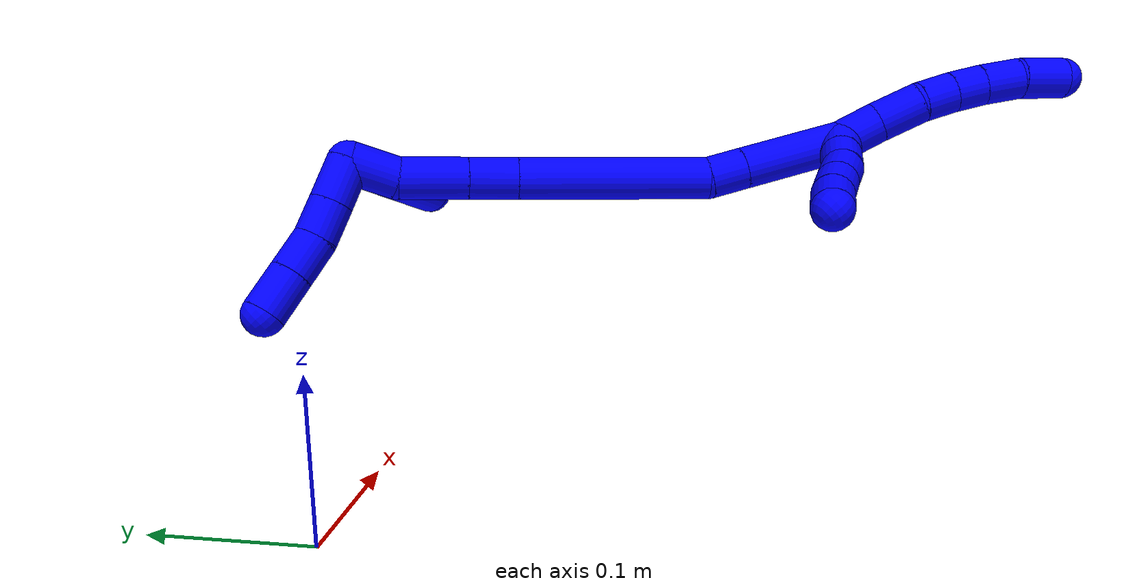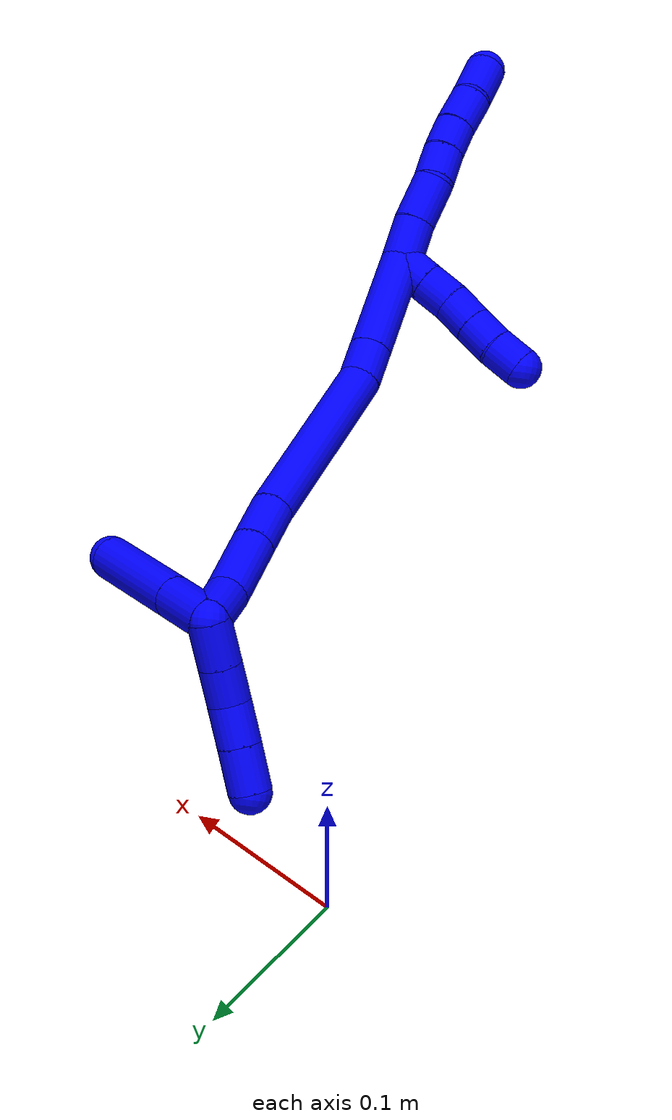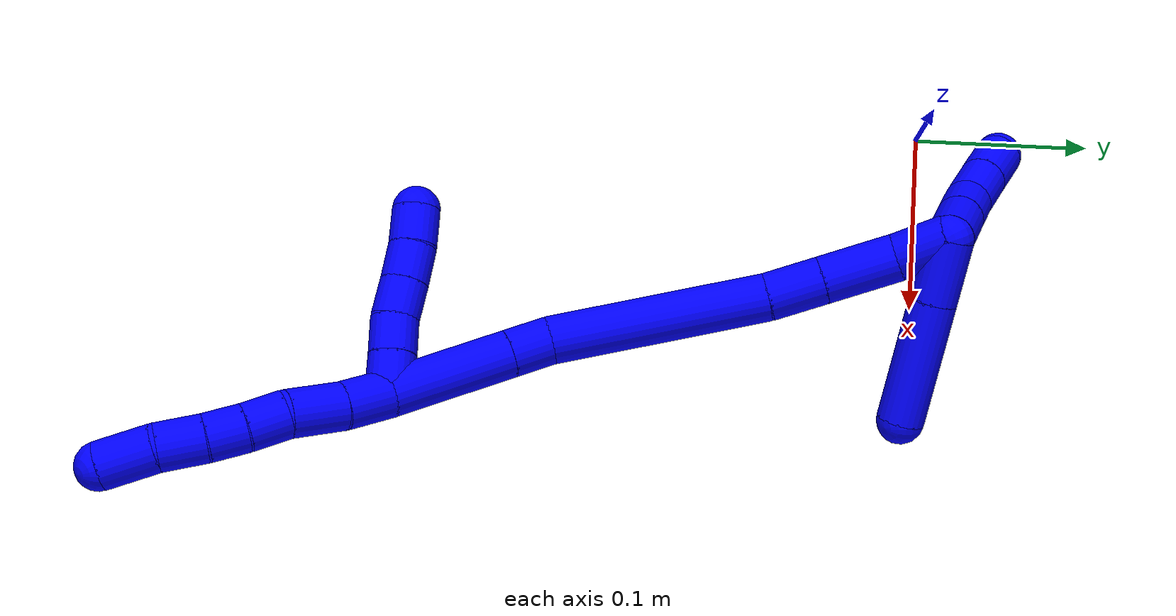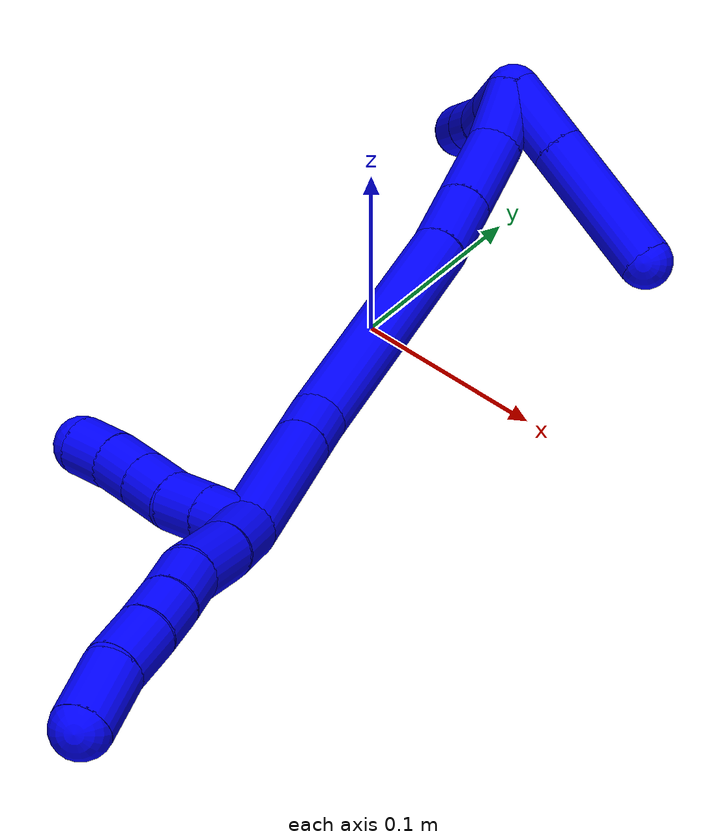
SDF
<sdf version="1.7">
 <world name="default">
  <plugin name="TubeGeneratorPlugin" filename="libtube_generator_plugin.so"/>
  <model name="photoneo_s_sensor">
   <static>1</static>
   <pose>0 0 2 1.57079 1.57079 3.14159</pose>
   <link name="link">
    <inertial><mass>0.1</mass></inertial>
    <sensor name="sensor" type="depth">
     <update_rate>30</update_rate>
     <camera>
      <horizontal_fov>1.22</horizontal_fov>
      <image><width>1920</width><height>1200</height><format>B8G8R8</format></image>
      <clip><near>0.1</near><far>4</far></clip>
      <depth_camera><output>points</output></depth_camera>
     </camera>
     <plugin name="camera_plugin" filename="libgazebo_ros_depth_camera.so">
      <baseline>0.2</baseline>
      <alwaysOn>1</alwaysOn>
      <updateRate>0.0</updateRate>
      <cameraName>camera_ir</cameraName>
      <imageTopicName>/camera/color/image_raw</imageTopicName>
      <cameraInfoTopicName>/camera/color/camera_info</cameraInfoTopicName>
      <depthImageTopicName>/camera/depth/image_raw</depthImageTopicName>
      <depthImageCameraInfoTopicName>/camera/depth/camera_info</depthImageCameraInfoTopicName>
      <pointCloudTopicName>/camera/depth/points</pointCloudTopicName>
      <frameName>fr_optical</frameName>
      <pointCloudCutoff>0.1</pointCloudCutoff>
      <pointCloudCutoffMax>2.0</pointCloudCutoffMax>
      <distortionK1>0</distortionK1>
      <distortionK2>0</distortionK2>
      <distortionK3>0</distortionK3>
      <distortionT1>0</distortionT1>
      <distortionT2>0</distortionT2>
      <CxPrime>0</CxPrime>
      <Cx>0</Cx>
      <Cy>0</Cy>
      <focalLength>0</focalLength>
      <hackBaseline>0</hackBaseline>
     </plugin>
    </sensor>
   </link>
  </model>
  <gravity>0 0 -9.8</gravity>
  <magnetic_field>6e-06 2.3e-05 -4.2e-05</magnetic_field>
  <atmosphere type="adiabatic"/>
  <physics name="default_physics" default="0" type="ode">
   <max_step_size>0.003</max_step_size>
   <real_time_factor>1</real_time_factor>
   <real_time_update_rate>1000</real_time_update_rate>
   <max_contacts>10000</max_contacts>
   <ode>
    <solver>
     <type>quick</type>
     <iters>100</iters>
     <sor>1.3</sor>
     <use_dynamic_moi_rescaling>0</use_dynamic_moi_rescaling>
    </solver>
    <constraints>
     <contact_max_correcting_vel>0</contact_max_correcting_vel>
     <contact_surface_layer>0.001</contact_surface_layer>
     <cfm>0</cfm>
     <erp>0.2</erp>
    </constraints>
   </ode>
  </physics>
  <scene><ambient>0.4 0.4 0.4 1</ambient><background>0.7 0.7 0.7 1</background><shadows>0</shadows></scene>
  <audio><device>default</device></audio>
  <spherical_coordinates>
   <surface_model>EARTH_WGS84</surface_model>
   <latitude_deg>0</latitude_deg>
   <longitude_deg>0</longitude_deg>
   <elevation>0</elevation>
   <heading_deg>0</heading_deg>
  </spherical_coordinates>
  <model name="bin">
   <static>1</static>
   <link name="bottom">
    <collision name="collision-bottom">
     <pose>0 0 -0.01 0 -0 0</pose>
     <geometry><box><size>0.8 0.6 0.02</size></box></geometry>
     <surface>
      <friction><ode><mu>100</mu><mu2>100</mu2></ode></friction>
      <contact><collide_bitmask>65535</collide_bitmask></contact>
     </surface>
    </collision>
   </link>
   <link name="west_wall">
    <collision name="collision-west_wall">
     <pose>-0.41 0 0.1 0 -0 0</pose>
     <geometry><box><size>0.02 0.6 0.2</size></box></geometry>
     <surface>
      <friction><ode><mu>100</mu><mu2>100</mu2></ode></friction>
      <contact><collide_bitmask>65535</collide_bitmask></contact>
     </surface>
    </collision>
   </link>
   <link name="east_wall">
    <collision name="collision-east_wall">
     <pose>0.41 0 0.1 0 -0 0</pose>
     <geometry><box><size>0.02 0.6 0.2</size></box></geometry>
     <surface>
      <friction><ode><mu>100</mu><mu2>100</mu2></ode></friction>
      <contact><collide_bitmask>65535</collide_bitmask></contact>
     </surface>
    </collision>
   </link>
   <link name="south_wall">
    <collision name="collision-south_wall">
     <pose>0 -0.31 0.1 0 -0 0</pose>
     <geometry><box><size>0.8 0.02 0.2</size></box></geometry>
     <surface>
      <friction><ode><mu>100</mu><mu2>100</mu2></ode></friction>
      <contact><collide_bitmask>65535</collide_bitmask></contact>
     </surface>
    </collision>
   </link>
   <link name="north_wall">
    <collision name="collision-north_wall">
     <pose>0 0.31 0.1 0 -0 0</pose>
     <geometry><box><size>0.8 0.02 0.2</size></box></geometry>
     <surface>
      <friction><ode><mu>100</mu><mu2>100</mu2></ode></friction>
      <contact><collide_bitmask>65535</collide_bitmask></contact>
     </surface>
    </collision>
   </link>
  </model>
  <model name="1">
   <static>0</static>
   <link name="1">
    <collision name="collision-cylinder-e_1_2_8">
     <pose>-0.000118 -0.003374 0.012473 0.264188 -0.009148 -0.001215</pose>
     <geometry><cylinder><radius>0.0125</radius><length>0.025845</length></cylinder></geometry>
     <surface>
      <friction><ode><mu>1.16</mu><mu2>1.16</mu2><slip1>0</slip1><slip2>0</slip2></ode></friction>
      <contact><ode><kp>1e+06</kp><kd>1</kd><max_vel>0</max_vel><min_depth>0.001</min_depth></ode></contact>
     </surface>
    </collision>
    <visual name="visual-cylinder-e_1_2_8">
     <pose>-0.000118 -0.003374 0.012473 0.264188 -0.009148 -0.001215</pose>
     <geometry><cylinder><radius>0.0125</radius><length>0.025845</length></cylinder></geometry>
     <material><ambient>0 0 1 1</ambient></material>
    </visual>
    <collision name="collision-cylinder-e_2_8_9">
     <pose>-0.001763 -0.011483 0.038714 0.331231 -0.104457 -0.017475</pose>
     <geometry><cylinder><radius>0.0125</radius><length>0.029277</length></cylinder></geometry>
     <surface>
      <friction><ode><mu>1.16</mu><mu2>1.16</mu2><slip1>0</slip1><slip2>0</slip2></ode></friction>
      <contact><ode><kp>1e+06</kp><kd>1</kd><max_vel>0</max_vel><min_depth>0.001</min_depth></ode></contact>
     </surface>
    </collision>
    <visual name="visual-cylinder-e_2_8_9">
     <pose>-0.001763 -0.011483 0.038714 0.331231 -0.104457 -0.017475</pose>
     <geometry><cylinder><radius>0.0125</radius><length>0.029277</length></cylinder></geometry>
     <material><ambient>0 0 1 1</ambient></material>
    </visual>
    <collision name="collision-cylinder-e_3_9_10">
     <pose>-0.002051 -0.020319 0.062218 0.398666 0.1166 0.023581</pose>
     <geometry><cylinder><radius>0.0125</radius><length>0.021275</length></cylinder></geometry>
     <surface>
      <friction><ode><mu>1.16</mu><mu2>1.16</mu2><slip1>0</slip1><slip2>0</slip2></ode></friction>
      <contact><ode><kp>1e+06</kp><kd>1</kd><max_vel>0</max_vel><min_depth>0.001</min_depth></ode></contact>
     </surface>
    </collision>
    <visual name="visual-cylinder-e_3_9_10">
     <pose>-0.002051 -0.020319 0.062218 0.398666 0.1166 0.023581</pose>
     <geometry><cylinder><radius>0.0125</radius><length>0.021275</length></cylinder></geometry>
     <material><ambient>0 0 1 1</ambient></material>
    </visual>
    <collision name="collision-cylinder-e_4_10_11">
     <pose>-1.6e-05 -0.02903 0.080866 0.477365 0.079343 0.019315</pose>
     <geometry><cylinder><radius>0.0125</radius><length>0.020129</length></cylinder></geometry>
     <surface>
      <friction><ode><mu>1.16</mu><mu2>1.16</mu2><slip1>0</slip1><slip2>0</slip2></ode></friction>
      <contact><ode><kp>1e+06</kp><kd>1</kd><max_vel>0</max_vel><min_depth>0.001</min_depth></ode></contact>
     </surface>
    </collision>
    <visual name="visual-cylinder-e_4_10_11">
     <pose>-1.6e-05 -0.02903 0.080866 0.477365 0.079343 0.019315</pose>
     <geometry><cylinder><radius>0.0125</radius><length>0.020129</length></cylinder></geometry>
     <material><ambient>0 0 1 1</ambient></material>
    </visual>
    <collision name="collision-cylinder-e_5_11_12">
     <pose>0.001336 -0.040071 0.100079 0.55818 0.04559 0.013067</pose>
     <geometry><cylinder><radius>0.0125</radius><length>0.024314</length></cylinder></geometry>
     <surface>
      <friction><ode><mu>1.16</mu><mu2>1.16</mu2><slip1>0</slip1><slip2>0</slip2></ode></friction>
      <contact><ode><kp>1e+06</kp><kd>1</kd><max_vel>0</max_vel><min_depth>0.001</min_depth></ode></contact>
     </surface>
    </collision>
    <visual name="visual-cylinder-e_5_11_12">
     <pose>0.001336 -0.040071 0.100079 0.55818 0.04559 0.013067</pose>
     <geometry><cylinder><radius>0.0125</radius><length>0.024314</length></cylinder></geometry>
     <material><ambient>0 0 1 1</ambient></material>
    </visual>
    <collision name="collision-cylinder-e_6_12_6">
     <pose>0.005072 -0.055213 0.121631 0.658724 0.220014 0.075473</pose>
     <geometry><cylinder><radius>0.0125</radius><length>0.02916</length></cylinder></geometry>
     <surface>
      <friction><ode><mu>1.16</mu><mu2>1.16</mu2><slip1>0</slip1><slip2>0</slip2></ode></friction>
      <contact><ode><kp>1e+06</kp><kd>1</kd><max_vel>0</max_vel><min_depth>0.001</min_depth></ode></contact>
     </surface>
    </collision>
    <visual name="visual-cylinder-e_6_12_6">
     <pose>0.005072 -0.055213 0.121631 0.658724 0.220014 0.075473</pose>
     <geometry><cylinder><radius>0.0125</radius><length>0.02916</length></cylinder></geometry>
     <material><ambient>0 0 1 1</ambient></material>
    </visual>
    <collision name="collision-cylinder-e_1_2_13">
     <pose>-0.007268 -0.004136 -0.005483 2.4953 -0.813641 -1.82016</pose>
     <geometry><cylinder><radius>0.0125</radius><length>0.02</length></cylinder></geometry>
     <surface>
      <friction><ode><mu>1.16</mu><mu2>1.16</mu2><slip1>0</slip1><slip2>0</slip2></ode></friction>
      <contact><ode><kp>1e+06</kp><kd>1</kd><max_vel>0</max_vel><min_depth>0.001</min_depth></ode></contact>
     </surface>
    </collision>
    <visual name="visual-cylinder-e_1_2_13">
     <pose>-0.007268 -0.004136 -0.005483 2.4953 -0.813641 -1.82016</pose>
     <geometry><cylinder><radius>0.0125</radius><length>0.02</length></cylinder></geometry>
     <material><ambient>0 0 1 1</ambient></material>
    </visual>
    <collision name="collision-cylinder-e_2_13_14">
     <pose>-0.021806 -0.012573 -0.01632 2.46494 -0.813936 -1.77238</pose>
     <geometry><cylinder><radius>0.0125</radius><length>0.02</length></cylinder></geometry>
     <surface>
      <friction><ode><mu>1.16</mu><mu2>1.16</mu2><slip1>0</slip1><slip2>0</slip2></ode></friction>
      <contact><ode><kp>1e+06</kp><kd>1</kd><max_vel>0</max_vel><min_depth>0.001</min_depth></ode></contact>
     </surface>
    </collision>
    <visual name="visual-cylinder-e_2_13_14">
     <pose>-0.021806 -0.012573 -0.01632 2.46494 -0.813936 -1.77238</pose>
     <geometry><cylinder><radius>0.0125</radius><length>0.02</length></cylinder></geometry>
     <material><ambient>0 0 1 1</ambient></material>
    </visual>
    <collision name="collision-cylinder-e_3_14_15">
     <pose>-0.036344 -0.019508 -0.028017 2.74774 -0.813632 -2.27425</pose>
     <geometry><cylinder><radius>0.0125</radius><length>0.02</length></cylinder></geometry>
     <surface>
      <friction><ode><mu>1.16</mu><mu2>1.16</mu2><slip1>0</slip1><slip2>0</slip2></ode></friction>
      <contact><ode><kp>1e+06</kp><kd>1</kd><max_vel>0</max_vel><min_depth>0.001</min_depth></ode></contact>
     </surface>
    </collision>
    <visual name="visual-cylinder-e_3_14_15">
     <pose>-0.036344 -0.019508 -0.028017 2.74774 -0.813632 -2.27425</pose>
     <geometry><cylinder><radius>0.0125</radius><length>0.02</length></cylinder></geometry>
     <material><ambient>0 0 1 1</ambient></material>
    </visual>
    <collision name="collision-cylinder-e_4_15_16">
     <pose>-0.051059 -0.024878 -0.040447 2.71946 -0.840141 -2.24706</pose>
     <geometry><cylinder><radius>0.0125</radius><length>0.02</length></cylinder></geometry>
     <surface>
      <friction><ode><mu>1.16</mu><mu2>1.16</mu2><slip1>0</slip1><slip2>0</slip2></ode></friction>
      <contact><ode><kp>1e+06</kp><kd>1</kd><max_vel>0</max_vel><min_depth>0.001</min_depth></ode></contact>
     </surface>
    </collision>
    <visual name="visual-cylinder-e_4_15_16">
     <pose>-0.051059 -0.024878 -0.040447 2.71946 -0.840141 -2.24706</pose>
     <geometry><cylinder><radius>0.0125</radius><length>0.02</length></cylinder></geometry>
     <material><ambient>0 0 1 1</ambient></material>
    </visual>
    <collision name="collision-cylinder-e_5_16_5">
     <pose>-0.066053 -0.031338 -0.051936 2.53771 -0.855086 -1.94237</pose>
     <geometry><cylinder><radius>0.0125</radius><length>0.02</length></cylinder></geometry>
     <surface>
      <friction><ode><mu>1.16</mu><mu2>1.16</mu2><slip1>0</slip1><slip2>0</slip2></ode></friction>
      <contact><ode><kp>1e+06</kp><kd>1</kd><max_vel>0</max_vel><min_depth>0.001</min_depth></ode></contact>
     </surface>
    </collision>
    <visual name="visual-cylinder-e_5_16_5">
     <pose>-0.066053 -0.031338 -0.051936 2.53771 -0.855086 -1.94237</pose>
     <geometry><cylinder><radius>0.0125</radius><length>0.02</length></cylinder></geometry>
     <material><ambient>0 0 1 1</ambient></material>
    </visual>
    <collision name="collision-cylinder-e_1_2_17">
     <pose>-0.004238 0.013593 -0.029028 -2.70364 -0.131449 0.575124</pose>
     <geometry><cylinder><radius>0.0125</radius><length>0.064663</length></cylinder></geometry>
     <surface>
      <friction><ode><mu>1.16</mu><mu2>1.16</mu2><slip1>0</slip1><slip2>0</slip2></ode></friction>
      <contact><ode><kp>1e+06</kp><kd>1</kd><max_vel>0</max_vel><min_depth>0.001</min_depth></ode></contact>
     </surface>
    </collision>
    <visual name="visual-cylinder-e_1_2_17">
     <pose>-0.004238 0.013593 -0.029028 -2.70364 -0.131449 0.575124</pose>
     <geometry><cylinder><radius>0.0125</radius><length>0.064663</length></cylinder></geometry>
     <material><ambient>0 0 1 1</ambient></material>
    </visual>
    <collision name="collision-cylinder-e_2_17_18">
     <pose>-0.009927 0.031885 -0.068162 -2.7064 -0.129521 0.570631</pose>
     <geometry><cylinder><radius>0.0125</radius><length>0.022479</length></cylinder></geometry>
     <surface>
      <friction><ode><mu>1.16</mu><mu2>1.16</mu2><slip1>0</slip1><slip2>0</slip2></ode></friction>
      <contact><ode><kp>1e+06</kp><kd>1</kd><max_vel>0</max_vel><min_depth>0.001</min_depth></ode></contact>
     </surface>
    </collision>
    <visual name="visual-cylinder-e_2_17_18">
     <pose>-0.009927 0.031885 -0.068162 -2.7064 -0.129521 0.570631</pose>
     <geometry><cylinder><radius>0.0125</radius><length>0.022479</length></cylinder></geometry>
     <material><ambient>0 0 1 1</ambient></material>
    </visual>
    <collision name="collision-cylinder-e_3_18_19">
     <pose>-0.018194 0.073597 -0.120924 -2.42689 -0.12009 0.319274</pose>
     <geometry><cylinder><radius>0.0125</radius><length>0.11377</length></cylinder></geometry>
     <surface>
      <friction><ode><mu>1.16</mu><mu2>1.16</mu2><slip1>0</slip1><slip2>0</slip2></ode></friction>
      <contact><ode><kp>1e+06</kp><kd>1</kd><max_vel>0</max_vel><min_depth>0.001</min_depth></ode></contact>
     </surface>
    </collision>
    <visual name="visual-cylinder-e_3_18_19">
     <pose>-0.018194 0.073597 -0.120924 -2.42689 -0.12009 0.319274</pose>
     <geometry><cylinder><radius>0.0125</radius><length>0.11377</length></cylinder></geometry>
     <material><ambient>0 0 1 1</ambient></material>
    </visual>
    <collision name="collision-cylinder-e_4_19_20">
     <pose>-0.028226 0.119793 -0.174617 -2.4477 -0.220435 0.594032</pose>
     <geometry><cylinder><radius>0.0125</radius><length>0.029429</length></cylinder></geometry>
     <surface>
      <friction><ode><mu>1.16</mu><mu2>1.16</mu2><slip1>0</slip1><slip2>0</slip2></ode></friction>
      <contact><ode><kp>1e+06</kp><kd>1</kd><max_vel>0</max_vel><min_depth>0.001</min_depth></ode></contact>
     </surface>
    </collision>
    <visual name="visual-cylinder-e_4_19_20">
     <pose>-0.028226 0.119793 -0.174617 -2.4477 -0.220435 0.594032</pose>
     <geometry><cylinder><radius>0.0125</radius><length>0.029429</length></cylinder></geometry>
     <material><ambient>0 0 1 1</ambient></material>
    </visual>
    <collision name="collision-cylinder-e_5_20_21">
     <pose>-0.035827 0.141472 -0.200932 -2.45596 -0.218553 0.596459</pose>
     <geometry><cylinder><radius>0.0125</radius><length>0.040435</length></cylinder></geometry>
     <surface>
      <friction><ode><mu>1.16</mu><mu2>1.16</mu2><slip1>0</slip1><slip2>0</slip2></ode></friction>
      <contact><ode><kp>1e+06</kp><kd>1</kd><max_vel>0</max_vel><min_depth>0.001</min_depth></ode></contact>
     </surface>
    </collision>
    <visual name="visual-cylinder-e_5_20_21">
     <pose>-0.035827 0.141472 -0.200932 -2.45596 -0.218553 0.596459</pose>
     <geometry><cylinder><radius>0.0125</radius><length>0.040435</length></cylinder></geometry>
     <material><ambient>0 0 1 1</ambient></material>
    </visual>
    <collision name="collision-cylinder-e_6_21_1">
     <pose>-0.045765 0.165222 -0.223692 -2.15769 -0.389948 0.706134</pose>
     <geometry><cylinder><radius>0.0125</radius><length>0.029224</length></cylinder></geometry>
     <surface>
      <friction><ode><mu>1.16</mu><mu2>1.16</mu2><slip1>0</slip1><slip2>0</slip2></ode></friction>
      <contact><ode><kp>1e+06</kp><kd>1</kd><max_vel>0</max_vel><min_depth>0.001</min_depth></ode></contact>
     </surface>
    </collision>
    <visual name="visual-cylinder-e_6_21_1">
     <pose>-0.045765 0.165222 -0.223692 -2.15769 -0.389948 0.706134</pose>
     <geometry><cylinder><radius>0.0125</radius><length>0.029224</length></cylinder></geometry>
     <material><ambient>0 0 1 1</ambient></material>
    </visual>
    <collision name="collision-cylinder-e_1_1_22">
     <pose>-0.035055 0.174448 -0.226178 0.385439 1.25056 0.279908</pose>
     <geometry><cylinder><radius>0.0125</radius><length>0.034272</length></cylinder></geometry>
     <surface>
      <friction><ode><mu>1.16</mu><mu2>1.16</mu2><slip1>0</slip1><slip2>0</slip2></ode></friction>
      <contact><ode><kp>1e+06</kp><kd>1</kd><max_vel>0</max_vel><min_depth>0.001</min_depth></ode></contact>
     </surface>
    </collision>
    <visual name="visual-cylinder-e_1_1_22">
     <pose>-0.035055 0.174448 -0.226178 0.385439 1.25056 0.279908</pose>
     <geometry><cylinder><radius>0.0125</radius><length>0.034272</length></cylinder></geometry>
     <material><ambient>0 0 1 1</ambient></material>
    </visual>
    <collision name="collision-cylinder-e_2_22_4">
     <pose>0.012412 0.168445 -0.211657 0.395407 1.25141 0.28749</pose>
     <geometry><cylinder><radius>0.0125</radius><length>0.065728</length></cylinder></geometry>
     <surface>
      <friction><ode><mu>1.16</mu><mu2>1.16</mu2><slip1>0</slip1><slip2>0</slip2></ode></friction>
      <contact><ode><kp>1e+06</kp><kd>1</kd><max_vel>0</max_vel><min_depth>0.001</min_depth></ode></contact>
     </surface>
    </collision>
    <visual name="visual-cylinder-e_2_22_4">
     <pose>0.012412 0.168445 -0.211657 0.395407 1.25141 0.28749</pose>
     <geometry><cylinder><radius>0.0125</radius><length>0.065728</length></cylinder></geometry>
     <material><ambient>0 0 1 1</ambient></material>
    </visual>
    <collision name="collision-cylinder-e_1_1_23">
     <pose>-0.051674 0.170261 -0.242893 2.65395 -0.026749 -0.107426</pose>
     <geometry><cylinder><radius>0.0125</radius><length>0.026535</length></cylinder></geometry>
     <surface>
      <friction><ode><mu>1.16</mu><mu2>1.16</mu2><slip1>0</slip1><slip2>0</slip2></ode></friction>
      <contact><ode><kp>1e+06</kp><kd>1</kd><max_vel>0</max_vel><min_depth>0.001</min_depth></ode></contact>
     </surface>
    </collision>
    <visual name="visual-cylinder-e_1_1_23">
     <pose>-0.051674 0.170261 -0.242893 2.65395 -0.026749 -0.107426</pose>
     <geometry><cylinder><radius>0.0125</radius><length>0.026535</length></cylinder></geometry>
     <material><ambient>0 0 1 1</ambient></material>
    </visual>
    <collision name="collision-cylinder-e_2_23_24">
     <pose>-0.052386 0.158901 -0.264546 2.66366 -0.031864 -0.13062</pose>
     <geometry><cylinder><radius>0.0125</radius><length>0.022391</length></cylinder></geometry>
     <surface>
      <friction><ode><mu>1.16</mu><mu2>1.16</mu2><slip1>0</slip1><slip2>0</slip2></ode></friction>
      <contact><ode><kp>1e+06</kp><kd>1</kd><max_vel>0</max_vel><min_depth>0.001</min_depth></ode></contact>
     </surface>
    </collision>
    <visual name="visual-cylinder-e_2_23_24">
     <pose>-0.052386 0.158901 -0.264546 2.66366 -0.031864 -0.13062</pose>
     <geometry><cylinder><radius>0.0125</radius><length>0.022391</length></cylinder></geometry>
     <material><ambient>0 0 1 1</ambient></material>
    </visual>
    <collision name="collision-cylinder-e_3_24_25">
     <pose>-0.054865 0.149733 -0.285847 2.80156 -0.174236 -0.941242</pose>
     <geometry><cylinder><radius>0.0125</radius><length>0.024483</length></cylinder></geometry>
     <surface>
      <friction><ode><mu>1.16</mu><mu2>1.16</mu2><slip1>0</slip1><slip2>0</slip2></ode></friction>
      <contact><ode><kp>1e+06</kp><kd>1</kd><max_vel>0</max_vel><min_depth>0.001</min_depth></ode></contact>
     </surface>
    </collision>
    <visual name="visual-cylinder-e_3_24_25">
     <pose>-0.054865 0.149733 -0.285847 2.80156 -0.174236 -0.941242</pose>
     <geometry><cylinder><radius>0.0125</radius><length>0.024483</length></cylinder></geometry>
     <material><ambient>0 0 1 1</ambient></material>
    </visual>
    <collision name="collision-cylinder-e_4_25_3">
     <pose>-0.059157 0.141401 -0.309602 2.8067 -0.163933 -0.904799</pose>
     <geometry><cylinder><radius>0.0125</radius><length>0.026592</length></cylinder></geometry>
     <surface>
      <friction><ode><mu>1.16</mu><mu2>1.16</mu2><slip1>0</slip1><slip2>0</slip2></ode></friction>
      <contact><ode><kp>1e+06</kp><kd>1</kd><max_vel>0</max_vel><min_depth>0.001</min_depth></ode></contact>
     </surface>
    </collision>
    <visual name="visual-cylinder-e_4_25_3">
     <pose>-0.059157 0.141401 -0.309602 2.8067 -0.163933 -0.904799</pose>
     <geometry><cylinder><radius>0.0125</radius><length>0.026592</length></cylinder></geometry>
     <material><ambient>0 0 1 1</ambient></material>
    </visual>
    <collision name="collision-sphere-3">
     <pose>-0.061327 0.13709 -0.321991 0 -0 0</pose>
     <geometry><sphere><radius>0.0125</radius></sphere></geometry>
     <surface>
      <friction><ode><mu>1.16</mu><mu2>1.16</mu2><slip1>0</slip1><slip2>0</slip2></ode></friction>
      <contact><ode><kp>1e+06</kp><kd>1</kd><max_vel>0</max_vel><min_depth>0.001</min_depth></ode></contact>
     </surface>
    </collision>
    <visual name="visual-sphere-3">
     <pose>-0.061327 0.13709 -0.321991 0 -0 0</pose>
     <geometry><sphere><radius>0.0125</radius></sphere></geometry>
     <material><ambient>0 0 1 1</ambient></material>
    </visual>
    <collision name="collision-sphere-25">
     <pose>-0.056987 0.145712 -0.297213 0 -0 0</pose>
     <geometry><sphere><radius>0.0125</radius></sphere></geometry>
     <surface>
      <friction><ode><mu>1.16</mu><mu2>1.16</mu2><slip1>0</slip1><slip2>0</slip2></ode></friction>
      <contact><ode><kp>1e+06</kp><kd>1</kd><max_vel>0</max_vel><min_depth>0.001</min_depth></ode></contact>
     </surface>
    </collision>
    <visual name="visual-sphere-25">
     <pose>-0.056987 0.145712 -0.297213 0 -0 0</pose>
     <geometry><sphere><radius>0.0125</radius></sphere></geometry>
     <material><ambient>0 0 1 1</ambient></material>
    </visual>
    <collision name="collision-sphere-24">
     <pose>-0.052742 0.153754 -0.274482 0 -0 0</pose>
     <geometry><sphere><radius>0.0125</radius></sphere></geometry>
     <surface>
      <friction><ode><mu>1.16</mu><mu2>1.16</mu2><slip1>0</slip1><slip2>0</slip2></ode></friction>
      <contact><ode><kp>1e+06</kp><kd>1</kd><max_vel>0</max_vel><min_depth>0.001</min_depth></ode></contact>
     </surface>
    </collision>
    <visual name="visual-sphere-24">
     <pose>-0.052742 0.153754 -0.274482 0 -0 0</pose>
     <geometry><sphere><radius>0.0125</radius></sphere></geometry>
     <material><ambient>0 0 1 1</ambient></material>
    </visual>
    <collision name="collision-sphere-23">
     <pose>-0.052029 0.164047 -0.25461 0 -0 0</pose>
     <geometry><sphere><radius>0.0125</radius></sphere></geometry>
     <surface>
      <friction><ode><mu>1.16</mu><mu2>1.16</mu2><slip1>0</slip1><slip2>0</slip2></ode></friction>
      <contact><ode><kp>1e+06</kp><kd>1</kd><max_vel>0</max_vel><min_depth>0.001</min_depth></ode></contact>
     </surface>
    </collision>
    <visual name="visual-sphere-23">
     <pose>-0.052029 0.164047 -0.25461 0 -0 0</pose>
     <geometry><sphere><radius>0.0125</radius></sphere></geometry>
     <material><ambient>0 0 1 1</ambient></material>
    </visual>
    <collision name="collision-sphere-4">
     <pose>0.043614 0.16447 -0.202135 0 -0 0</pose>
     <geometry><sphere><radius>0.0125</radius></sphere></geometry>
     <surface>
      <friction><ode><mu>1.16</mu><mu2>1.16</mu2><slip1>0</slip1><slip2>0</slip2></ode></friction>
      <contact><ode><kp>1e+06</kp><kd>1</kd><max_vel>0</max_vel><min_depth>0.001</min_depth></ode></contact>
     </surface>
    </collision>
    <visual name="visual-sphere-4">
     <pose>0.043614 0.16447 -0.202135 0 -0 0</pose>
     <geometry><sphere><radius>0.0125</radius></sphere></geometry>
     <material><ambient>0 0 1 1</ambient></material>
    </visual>
    <collision name="collision-sphere-22">
     <pose>-0.01879 0.17242 -0.22118 0 -0 0</pose>
     <geometry><sphere><radius>0.0125</radius></sphere></geometry>
     <surface>
      <friction><ode><mu>1.16</mu><mu2>1.16</mu2><slip1>0</slip1><slip2>0</slip2></ode></friction>
      <contact><ode><kp>1e+06</kp><kd>1</kd><max_vel>0</max_vel><min_depth>0.001</min_depth></ode></contact>
     </surface>
    </collision>
    <visual name="visual-sphere-22">
     <pose>-0.01879 0.17242 -0.22118 0 -0 0</pose>
     <geometry><sphere><radius>0.0125</radius></sphere></geometry>
     <material><ambient>0 0 1 1</ambient></material>
    </visual>
    <collision name="collision-sphere-1">
     <pose>-0.051319 0.176476 -0.231177 0 -0 0</pose>
     <geometry><sphere><radius>0.0125</radius></sphere></geometry>
     <surface>
      <friction><ode><mu>1.16</mu><mu2>1.16</mu2><slip1>0</slip1><slip2>0</slip2></ode></friction>
      <contact><ode><kp>1e+06</kp><kd>1</kd><max_vel>0</max_vel><min_depth>0.001</min_depth></ode></contact>
     </surface>
    </collision>
    <visual name="visual-sphere-1">
     <pose>-0.051319 0.176476 -0.231177 0 -0 0</pose>
     <geometry><sphere><radius>0.0125</radius></sphere></geometry>
     <material><ambient>0 0 1 1</ambient></material>
    </visual>
    <collision name="collision-sphere-21">
     <pose>-0.04021 0.153969 -0.216208 0 -0 0</pose>
     <geometry><sphere><radius>0.0125</radius></sphere></geometry>
     <surface>
      <friction><ode><mu>1.16</mu><mu2>1.16</mu2><slip1>0</slip1><slip2>0</slip2></ode></friction>
      <contact><ode><kp>1e+06</kp><kd>1</kd><max_vel>0</max_vel><min_depth>0.001</min_depth></ode></contact>
     </surface>
    </collision>
    <visual name="visual-sphere-21">
     <pose>-0.04021 0.153969 -0.216208 0 -0 0</pose>
     <geometry><sphere><radius>0.0125</radius></sphere></geometry>
     <material><ambient>0 0 1 1</ambient></material>
    </visual>
    <collision name="collision-sphere-12">
     <pose>0.00189 -0.046504 0.11038 0 -0 0</pose>
     <geometry><sphere><radius>0.0125</radius></sphere></geometry>
     <surface>
      <friction><ode><mu>1.16</mu><mu2>1.16</mu2><slip1>0</slip1><slip2>0</slip2></ode></friction>
      <contact><ode><kp>1e+06</kp><kd>1</kd><max_vel>0</max_vel><min_depth>0.001</min_depth></ode></contact>
     </surface>
    </collision>
    <visual name="visual-sphere-12">
     <pose>0.00189 -0.046504 0.11038 0 -0 0</pose>
     <geometry><sphere><radius>0.0125</radius></sphere></geometry>
     <material><ambient>0 0 1 1</ambient></material>
    </visual>
    <collision name="collision-sphere-11">
     <pose>0.000781 -0.033639 0.089778 0 -0 0</pose>
     <geometry><sphere><radius>0.0125</radius></sphere></geometry>
     <surface>
      <friction><ode><mu>1.16</mu><mu2>1.16</mu2><slip1>0</slip1><slip2>0</slip2></ode></friction>
      <contact><ode><kp>1e+06</kp><kd>1</kd><max_vel>0</max_vel><min_depth>0.001</min_depth></ode></contact>
     </surface>
    </collision>
    <visual name="visual-sphere-11">
     <pose>0.000781 -0.033639 0.089778 0 -0 0</pose>
     <geometry><sphere><radius>0.0125</radius></sphere></geometry>
     <material><ambient>0 0 1 1</ambient></material>
    </visual>
    <collision name="collision-sphere-10">
     <pose>-0.000814 -0.02442 0.071955 0 -0 0</pose>
     <geometry><sphere><radius>0.0125</radius></sphere></geometry>
     <surface>
      <friction><ode><mu>1.16</mu><mu2>1.16</mu2><slip1>0</slip1><slip2>0</slip2></ode></friction>
      <contact><ode><kp>1e+06</kp><kd>1</kd><max_vel>0</max_vel><min_depth>0.001</min_depth></ode></contact>
     </surface>
    </collision>
    <visual name="visual-sphere-10">
     <pose>-0.000814 -0.02442 0.071955 0 -0 0</pose>
     <geometry><sphere><radius>0.0125</radius></sphere></geometry>
     <material><ambient>0 0 1 1</ambient></material>
    </visual>
    <collision name="collision-sphere-9">
     <pose>-0.003289 -0.016218 0.052481 0 -0 0</pose>
     <geometry><sphere><radius>0.0125</radius></sphere></geometry>
     <surface>
      <friction><ode><mu>1.16</mu><mu2>1.16</mu2><slip1>0</slip1><slip2>0</slip2></ode></friction>
      <contact><ode><kp>1e+06</kp><kd>1</kd><max_vel>0</max_vel><min_depth>0.001</min_depth></ode></contact>
     </surface>
    </collision>
    <visual name="visual-sphere-9">
     <pose>-0.003289 -0.016218 0.052481 0 -0 0</pose>
     <geometry><sphere><radius>0.0125</radius></sphere></geometry>
     <material><ambient>0 0 1 1</ambient></material>
    </visual>
    <collision name="collision-sphere-2">
     <geometry><sphere><radius>0.0125</radius></sphere></geometry>
     <surface>
      <friction><ode><mu>1.16</mu><mu2>1.16</mu2><slip1>0</slip1><slip2>0</slip2></ode></friction>
      <contact><ode><kp>1e+06</kp><kd>1</kd><max_vel>0</max_vel><min_depth>0.001</min_depth></ode></contact>
     </surface>
    </collision>
    <visual name="visual-sphere-2">
     <geometry><sphere><radius>0.0125</radius></sphere></geometry>
     <material><ambient>0 0 1 1</ambient></material>
    </visual>
    <collision name="collision-sphere-19">
     <pose>-0.025009 0.110611 -0.163579 0 -0 0</pose>
     <geometry><sphere><radius>0.0125</radius></sphere></geometry>
     <surface>
      <friction><ode><mu>1.16</mu><mu2>1.16</mu2><slip1>0</slip1><slip2>0</slip2></ode></friction>
      <contact><ode><kp>1e+06</kp><kd>1</kd><max_vel>0</max_vel><min_depth>0.001</min_depth></ode></contact>
     </surface>
    </collision>
    <visual name="visual-sphere-19">
     <pose>-0.025009 0.110611 -0.163579 0 -0 0</pose>
     <geometry><sphere><radius>0.0125</radius></sphere></geometry>
     <material><ambient>0 0 1 1</ambient></material>
    </visual>
    <collision name="collision-sphere-8">
     <pose>-0.000236 -0.006748 0.024947 0 -0 0</pose>
     <geometry><sphere><radius>0.0125</radius></sphere></geometry>
     <surface>
      <friction><ode><mu>1.16</mu><mu2>1.16</mu2><slip1>0</slip1><slip2>0</slip2></ode></friction>
      <contact><ode><kp>1e+06</kp><kd>1</kd><max_vel>0</max_vel><min_depth>0.001</min_depth></ode></contact>
     </surface>
    </collision>
    <visual name="visual-sphere-8">
     <pose>-0.000236 -0.006748 0.024947 0 -0 0</pose>
     <geometry><sphere><radius>0.0125</radius></sphere></geometry>
     <material><ambient>0 0 1 1</ambient></material>
    </visual>
    <collision name="collision-sphere-6">
     <pose>0.008254 -0.063923 0.132883 0 -0 0</pose>
     <geometry><sphere><radius>0.0125</radius></sphere></geometry>
     <surface>
      <friction><ode><mu>1.16</mu><mu2>1.16</mu2><slip1>0</slip1><slip2>0</slip2></ode></friction>
      <contact><ode><kp>1e+06</kp><kd>1</kd><max_vel>0</max_vel><min_depth>0.001</min_depth></ode></contact>
     </surface>
    </collision>
    <visual name="visual-sphere-6">
     <pose>0.008254 -0.063923 0.132883 0 -0 0</pose>
     <geometry><sphere><radius>0.0125</radius></sphere></geometry>
     <material><ambient>0 0 1 1</ambient></material>
    </visual>
    <collision name="collision-sphere-13">
     <pose>-0.014536 -0.008273 -0.010967 0 -0 0</pose>
     <geometry><sphere><radius>0.0125</radius></sphere></geometry>
     <surface>
      <friction><ode><mu>1.16</mu><mu2>1.16</mu2><slip1>0</slip1><slip2>0</slip2></ode></friction>
      <contact><ode><kp>1e+06</kp><kd>1</kd><max_vel>0</max_vel><min_depth>0.001</min_depth></ode></contact>
     </surface>
    </collision>
    <visual name="visual-sphere-13">
     <pose>-0.014536 -0.008273 -0.010967 0 -0 0</pose>
     <geometry><sphere><radius>0.0125</radius></sphere></geometry>
     <material><ambient>0 0 1 1</ambient></material>
    </visual>
    <collision name="collision-sphere-14">
     <pose>-0.029076 -0.016872 -0.021674 0 -0 0</pose>
     <geometry><sphere><radius>0.0125</radius></sphere></geometry>
     <surface>
      <friction><ode><mu>1.16</mu><mu2>1.16</mu2><slip1>0</slip1><slip2>0</slip2></ode></friction>
      <contact><ode><kp>1e+06</kp><kd>1</kd><max_vel>0</max_vel><min_depth>0.001</min_depth></ode></contact>
     </surface>
    </collision>
    <visual name="visual-sphere-14">
     <pose>-0.029076 -0.016872 -0.021674 0 -0 0</pose>
     <geometry><sphere><radius>0.0125</radius></sphere></geometry>
     <material><ambient>0 0 1 1</ambient></material>
    </visual>
    <collision name="collision-sphere-15">
     <pose>-0.043611 -0.022144 -0.034359 0 -0 0</pose>
     <geometry><sphere><radius>0.0125</radius></sphere></geometry>
     <surface>
      <friction><ode><mu>1.16</mu><mu2>1.16</mu2><slip1>0</slip1><slip2>0</slip2></ode></friction>
      <contact><ode><kp>1e+06</kp><kd>1</kd><max_vel>0</max_vel><min_depth>0.001</min_depth></ode></contact>
     </surface>
    </collision>
    <visual name="visual-sphere-15">
     <pose>-0.043611 -0.022144 -0.034359 0 -0 0</pose>
     <geometry><sphere><radius>0.0125</radius></sphere></geometry>
     <material><ambient>0 0 1 1</ambient></material>
    </visual>
    <collision name="collision-sphere-16">
     <pose>-0.058506 -0.027612 -0.046535 0 -0 0</pose>
     <geometry><sphere><radius>0.0125</radius></sphere></geometry>
     <surface>
      <friction><ode><mu>1.16</mu><mu2>1.16</mu2><slip1>0</slip1><slip2>0</slip2></ode></friction>
      <contact><ode><kp>1e+06</kp><kd>1</kd><max_vel>0</max_vel><min_depth>0.001</min_depth></ode></contact>
     </surface>
    </collision>
    <visual name="visual-sphere-16">
     <pose>-0.058506 -0.027612 -0.046535 0 -0 0</pose>
     <geometry><sphere><radius>0.0125</radius></sphere></geometry>
     <material><ambient>0 0 1 1</ambient></material>
    </visual>
    <collision name="collision-sphere-5">
     <pose>-0.073599 -0.035064 -0.057337 0 -0 0</pose>
     <geometry><sphere><radius>0.0125</radius></sphere></geometry>
     <surface>
      <friction><ode><mu>1.16</mu><mu2>1.16</mu2><slip1>0</slip1><slip2>0</slip2></ode></friction>
      <contact><ode><kp>1e+06</kp><kd>1</kd><max_vel>0</max_vel><min_depth>0.001</min_depth></ode></contact>
     </surface>
    </collision>
    <visual name="visual-sphere-5">
     <pose>-0.073599 -0.035064 -0.057337 0 -0 0</pose>
     <geometry><sphere><radius>0.0125</radius></sphere></geometry>
     <material><ambient>0 0 1 1</ambient></material>
    </visual>
    <collision name="collision-sphere-17">
     <pose>-0.008475 0.027186 -0.058055 0 -0 0</pose>
     <geometry><sphere><radius>0.0125</radius></sphere></geometry>
     <surface>
      <friction><ode><mu>1.16</mu><mu2>1.16</mu2><slip1>0</slip1><slip2>0</slip2></ode></friction>
      <contact><ode><kp>1e+06</kp><kd>1</kd><max_vel>0</max_vel><min_depth>0.001</min_depth></ode></contact>
     </surface>
    </collision>
    <visual name="visual-sphere-17">
     <pose>-0.008475 0.027186 -0.058055 0 -0 0</pose>
     <geometry><sphere><radius>0.0125</radius></sphere></geometry>
     <material><ambient>0 0 1 1</ambient></material>
    </visual>
    <collision name="collision-sphere-18">
     <pose>-0.011379 0.036584 -0.078269 0 -0 0</pose>
     <geometry><sphere><radius>0.0125</radius></sphere></geometry>
     <surface>
      <friction><ode><mu>1.16</mu><mu2>1.16</mu2><slip1>0</slip1><slip2>0</slip2></ode></friction>
      <contact><ode><kp>1e+06</kp><kd>1</kd><max_vel>0</max_vel><min_depth>0.001</min_depth></ode></contact>
     </surface>
    </collision>
    <visual name="visual-sphere-18">
     <pose>-0.011379 0.036584 -0.078269 0 -0 0</pose>
     <geometry><sphere><radius>0.0125</radius></sphere></geometry>
     <material><ambient>0 0 1 1</ambient></material>
    </visual>
    <collision name="collision-sphere-20">
     <pose>-0.031443 0.128976 -0.185655 0 -0 0</pose>
     <geometry><sphere><radius>0.0125</radius></sphere></geometry>
     <surface>
      <friction><ode><mu>1.16</mu><mu2>1.16</mu2><slip1>0</slip1><slip2>0</slip2></ode></friction>
      <contact><ode><kp>1e+06</kp><kd>1</kd><max_vel>0</max_vel><min_depth>0.001</min_depth></ode></contact>
     </surface>
    </collision>
    <visual name="visual-sphere-20">
     <pose>-0.031443 0.128976 -0.185655 0 -0 0</pose>
     <geometry><sphere><radius>0.0125</radius></sphere></geometry>
     <material><ambient>0 0 1 1</ambient></material>
    </visual>
    <inertial>
     <pose>-0.020798 0.067629 -0.104916 0 -0 0</pose>
     <mass>0.75</mass>
     <inertia>
      <ixx>0.000235</ixx>
      <ixy>0</ixy>
      <ixz>0</ixz>
      <iyy>-1.4e-05</iyy>
      <iyz>0</iyz>
      <izz>-0.000106</izz>
     </inertia>
    </inertial>
   </link>
   <pose>0.177821 -0.279445 0.202569 0.809075 0.496065 0.116525</pose>
  </model>
 </world>
</sdf>
